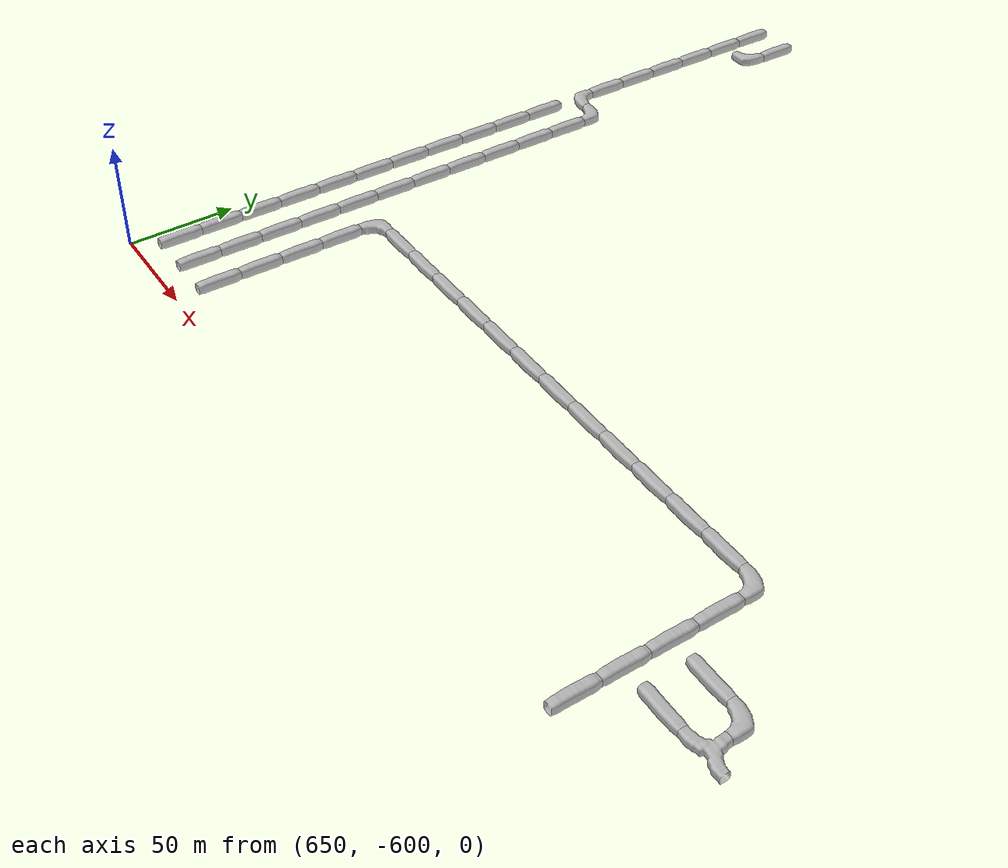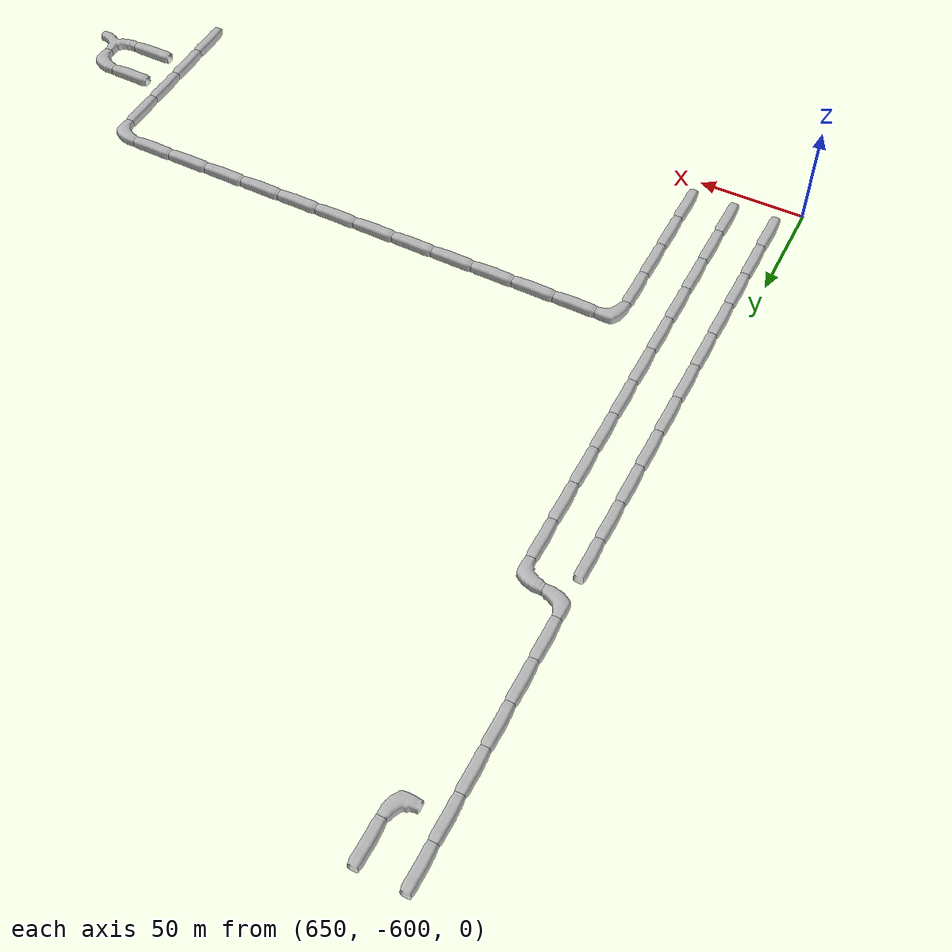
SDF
<sdf version="1.6">
 <world name="cave_32000_32">
  <include>
   <static>true</static>
   <name>cave_33_-12</name>
   <pose>660 -240 0 0 0 0.0</pose>
   <uri>model://cave_straight_20m</uri>
  </include>
  <include>
   <static>true</static>
   <name>cave_33_-13</name>
   <pose>660 -260 0 0 0 0.0</pose>
   <uri>model://cave_straight_20m</uri>
  </include>
  <include>
   <static>true</static>
   <name>cave_33_-14</name>
   <pose>660 -280 0 0 0 0.0</pose>
   <uri>model://cave_straight_20m</uri>
  </include>
  <include>
   <static>true</static>
   <name>cave_33_-15</name>
   <pose>660 -300 0 0 0 0.0</pose>
   <uri>model://cave_straight_20m</uri>
  </include>
  <include>
   <static>true</static>
   <name>cave_33_-16</name>
   <pose>660 -320 0 0 0 0.0</pose>
   <uri>model://cave_straight_20m</uri>
  </include>
  <include>
   <static>true</static>
   <name>cave_33_-17</name>
   <pose>660 -340 0 0 0 0.0</pose>
   <uri>model://cave_straight_20m</uri>
  </include>
  <include>
   <static>true</static>
   <name>cave_33_-18</name>
   <pose>660 -360 0 0 0 0.0</pose>
   <uri>model://cave_L_20m</uri>
  </include>
  <include>
   <static>true</static>
   <name>cave_34_-18</name>
   <pose>680 -360 0 0 0 3.141592653589793</pose>
   <uri>model://cave_L_20m</uri>
  </include>
  <include>
   <static>true</static>
   <name>cave_34_-19</name>
   <pose>680 -380 0 0 0 0.0</pose>
   <uri>model://cave_straight_20m</uri>
  </include>
  <include>
   <static>true</static>
   <name>cave_34_-20</name>
   <pose>680 -400 0 0 0 0.0</pose>
   <uri>model://cave_straight_20m</uri>
  </include>
  <include>
   <static>true</static>
   <name>cave_34_-21</name>
   <pose>680 -420 0 0 0 0.0</pose>
   <uri>model://cave_straight_20m</uri>
  </include>
  <include>
   <static>true</static>
   <name>cave_34_-22</name>
   <pose>680 -440 0 0 0 0.0</pose>
   <uri>model://cave_straight_20m</uri>
  </include>
  <include>
   <static>true</static>
   <name>cave_34_-23</name>
   <pose>680 -460 0 0 0 0.0</pose>
   <uri>model://cave_straight_20m</uri>
  </include>
  <include>
   <static>true</static>
   <name>cave_34_-24</name>
   <pose>680 -480 0 0 0 0.0</pose>
   <uri>model://cave_straight_20m</uri>
  </include>
  <include>
   <static>true</static>
   <name>cave_34_-25</name>
   <pose>680 -500 0 0 0 0.0</pose>
   <uri>model://cave_straight_20m</uri>
  </include>
  <include>
   <static>true</static>
   <name>cave_34_-26</name>
   <pose>680 -520 0 0 0 0.0</pose>
   <uri>model://cave_straight_20m</uri>
  </include>
  <include>
   <static>true</static>
   <name>cave_34_-27</name>
   <pose>680 -540 0 0 0 0.0</pose>
   <uri>model://cave_straight_20m</uri>
  </include>
  <include>
   <static>true</static>
   <name>cave_34_-28</name>
   <pose>680 -560 0 0 0 0.0</pose>
   <uri>model://cave_straight_20m</uri>
  </include>
  <include>
   <static>true</static>
   <name>cave_34_-29</name>
   <pose>680 -580 0 0 0 0.0</pose>
   <uri>model://cave_straight_20m</uri>
  </include>
  <include>
   <static>true</static>
   <name>cave_48_-29</name>
   <pose>960 -580 0 0 0 0.0</pose>
   <uri>model://cave_straight_20m</uri>
  </include>
  <include>
   <static>true</static>
   <name>cave_48_-28</name>
   <pose>960 -560 0 0 0 0.0</pose>
   <uri>model://cave_straight_20m</uri>
  </include>
  <include>
   <static>true</static>
   <name>cave_48_-27</name>
   <pose>960 -540 0 0 0 0.0</pose>
   <uri>model://cave_straight_20m</uri>
  </include>
  <include>
   <static>true</static>
   <name>cave_48_-26</name>
   <pose>960 -520 0 0 0 0.0</pose>
   <uri>model://cave_straight_20m</uri>
  </include>
  <include>
   <static>true</static>
   <name>cave_48_-25</name>
   <pose>960 -500 0 0 0 3.141592653589793</pose>
   <uri>model://cave_L_20m</uri>
  </include>
  <include>
   <static>true</static>
   <name>cave_47_-25</name>
   <pose>940 -500 0 0 0 1.5707963267948966</pose>
   <uri>model://cave_straight_20m</uri>
  </include>
  <include>
   <static>true</static>
   <name>cave_46_-25</name>
   <pose>920 -500 0 0 0 1.5707963267948966</pose>
   <uri>model://cave_straight_20m</uri>
  </include>
  <include>
   <static>true</static>
   <name>cave_45_-25</name>
   <pose>900 -500 0 0 0 1.5707963267948966</pose>
   <uri>model://cave_straight_20m</uri>
  </include>
  <include>
   <static>true</static>
   <name>cave_44_-25</name>
   <pose>880 -500 0 0 0 1.5707963267948966</pose>
   <uri>model://cave_straight_20m</uri>
  </include>
  <include>
   <static>true</static>
   <name>cave_43_-25</name>
   <pose>860 -500 0 0 0 1.5707963267948966</pose>
   <uri>model://cave_straight_20m</uri>
  </include>
  <include>
   <static>true</static>
   <name>cave_42_-25</name>
   <pose>840 -500 0 0 0 1.5707963267948966</pose>
   <uri>model://cave_straight_20m</uri>
  </include>
  <include>
   <static>true</static>
   <name>cave_41_-25</name>
   <pose>820 -500 0 0 0 1.5707963267948966</pose>
   <uri>model://cave_straight_20m</uri>
  </include>
  <include>
   <static>true</static>
   <name>cave_40_-25</name>
   <pose>800 -500 0 0 0 1.5707963267948966</pose>
   <uri>model://cave_straight_20m</uri>
  </include>
  <include>
   <static>true</static>
   <name>cave_39_-25</name>
   <pose>780 -500 0 0 0 1.5707963267948966</pose>
   <uri>model://cave_straight_20m</uri>
  </include>
  <include>
   <static>true</static>
   <name>cave_38_-25</name>
   <pose>760 -500 0 0 0 1.5707963267948966</pose>
   <uri>model://cave_straight_20m</uri>
  </include>
  <include>
   <static>true</static>
   <name>cave_37_-25</name>
   <pose>740 -500 0 0 0 1.5707963267948966</pose>
   <uri>model://cave_straight_20m</uri>
  </include>
  <include>
   <static>true</static>
   <name>cave_36_-25</name>
   <pose>720 -500 0 0 0 1.5707963267948966</pose>
   <uri>model://cave_straight_20m</uri>
  </include>
  <include>
   <static>true</static>
   <name>cave_35_-25</name>
   <pose>700 -500 0 0 0 -1.5707963267948966</pose>
   <uri>model://cave_L_20m</uri>
  </include>
  <include>
   <static>true</static>
   <name>cave_35_-26</name>
   <pose>700 -520 0 0 0 0.0</pose>
   <uri>model://cave_straight_20m</uri>
  </include>
  <include>
   <static>true</static>
   <name>cave_35_-27</name>
   <pose>700 -540 0 0 0 0.0</pose>
   <uri>model://cave_straight_20m</uri>
  </include>
  <include>
   <static>true</static>
   <name>cave_35_-28</name>
   <pose>700 -560 0 0 0 0.0</pose>
   <uri>model://cave_straight_20m</uri>
  </include>
  <include>
   <static>true</static>
   <name>cave_35_-29</name>
   <pose>700 -580 0 0 0 0.0</pose>
   <uri>model://cave_straight_20m</uri>
  </include>
  <include>
   <static>true</static>
   <name>cave_33_-29</name>
   <pose>660 -580 0 0 0 0.0</pose>
   <uri>model://cave_straight_20m</uri>
  </include>
  <include>
   <static>true</static>
   <name>cave_33_-28</name>
   <pose>660 -560 0 0 0 0.0</pose>
   <uri>model://cave_straight_20m</uri>
  </include>
  <include>
   <static>true</static>
   <name>cave_33_-27</name>
   <pose>660 -540 0 0 0 0.0</pose>
   <uri>model://cave_straight_20m</uri>
  </include>
  <include>
   <static>true</static>
   <name>cave_33_-26</name>
   <pose>660 -520 0 0 0 0.0</pose>
   <uri>model://cave_straight_20m</uri>
  </include>
  <include>
   <static>true</static>
   <name>cave_33_-25</name>
   <pose>660 -500 0 0 0 0.0</pose>
   <uri>model://cave_straight_20m</uri>
  </include>
  <include>
   <static>true</static>
   <name>cave_33_-24</name>
   <pose>660 -480 0 0 0 0.0</pose>
   <uri>model://cave_straight_20m</uri>
  </include>
  <include>
   <static>true</static>
   <name>cave_33_-23</name>
   <pose>660 -460 0 0 0 0.0</pose>
   <uri>model://cave_straight_20m</uri>
  </include>
  <include>
   <static>true</static>
   <name>cave_33_-22</name>
   <pose>660 -440 0 0 0 0.0</pose>
   <uri>model://cave_straight_20m</uri>
  </include>
  <include>
   <static>true</static>
   <name>cave_33_-21</name>
   <pose>660 -420 0 0 0 0.0</pose>
   <uri>model://cave_straight_20m</uri>
  </include>
  <include>
   <static>true</static>
   <name>cave_33_-20</name>
   <pose>660 -400 0 0 0 0.0</pose>
   <uri>model://cave_straight_20m</uri>
  </include>
  <include>
   <static>true</static>
   <name>cave_33_-19</name>
   <pose>660 -380 0 0 0 0.0</pose>
   <uri>model://cave_straight_20m</uri>
  </include>
  <include>
   <static>true</static>
   <name>cave_50_-28</name>
   <pose>1000 -560 0 0 0 0.0</pose>
   <uri>model://cave_3way_20m</uri>
  </include>
  <include>
   <static>true</static>
   <name>cave_49_-28</name>
   <pose>980 -560 0 0 0 1.5707963267948966</pose>
   <uri>model://cave_straight_20m</uri>
  </include>
  <include>
   <static>true</static>
   <name>cave_50_-27</name>
   <pose>1000 -540 0 0 0 3.141592653589793</pose>
   <uri>model://cave_L_20m</uri>
  </include>
  <include>
   <static>true</static>
   <name>cave_49_-27</name>
   <pose>980 -540 0 0 0 1.5707963267948966</pose>
   <uri>model://cave_straight_20m</uri>
  </include>
  <include>
   <static>true</static>
   <name>cave_34_-12</name>
   <pose>680 -240 0 0 0 0.0</pose>
   <uri>model://cave_straight_20m</uri>
  </include>
  <include>
   <static>true</static>
   <name>cave_34_-13</name>
   <pose>680 -260 0 0 0 1.5707963267948966</pose>
   <uri>model://cave_L_20m</uri>
  </include>
 </world>
</sdf>
